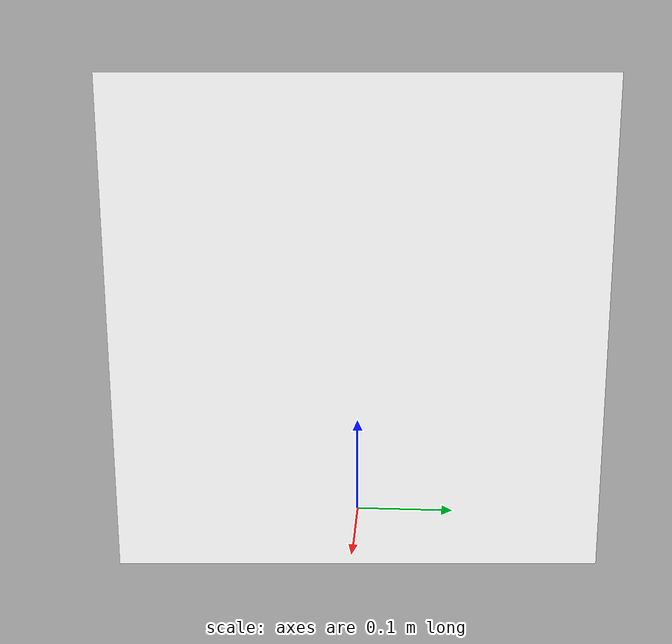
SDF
<sdf version="1.8">
 <world name="demo">
  <plugin filename="gz-sim-physics-system" name="gz::sim::systems::Physics"/>
  <plugin filename="gz-sim-sensors-system" name="gz::sim::systems::Sensors">
   <render_engine>ogre2</render_engine>
  </plugin>
  <plugin filename="gz-sim-scene-broadcaster-system" name="gz::sim::systems::SceneBroadcaster"/>
  <plugin filename="gz-sim-user-commands-system" name="gz::sim::systems::UserCommands"/>
  <physics name="10ms" type="ode">
   <real_time_update_rate>100</real_time_update_rate>
   <max_step_size>0.01</max_step_size>
   <real_time_factor>1.0</real_time_factor>
  </physics>
  <light name="sun" type="directional">
   <pose>0 0 10 0 0 0</pose>
   <diffuse>0.8 0.8 0.8 1</diffuse>
   <specular>0.2 0.2 0.2 1</specular>
   <attenuation>
    <range>1000</range>
    <constant>0.9</constant>
    <linear>0.01</linear>
    <quadratic>0.001</quadratic>
   </attenuation>
   <direction>-0.5 0.1 -0.9</direction>
  </light>
  <model name="cube_grid">
   <pose>0 0 0.2 -1.51 0 -1.51</pose>
   <static>true</static>
   <link name="link">
    <visual name="backgroundf">
     <pose>0.00 0.00 0.001 0 0 0</pose>
     <geometry><box><size>0.5 0.5 0.03</size></box></geometry>
     <material><ambient>1 1 1 1</ambient><diffuse>1 1 1 1</diffuse></material>
    </visual>
    <visual name="visual_cube_0_0">
     <geometry><box><size>0.03 0.03 0.03</size></box></geometry>
     <material><ambient>1 1 1 1</ambient><diffuse>1 1 1 1</diffuse></material>
    </visual>
    <visual name="visual_cube_0_1">
     <pose>0.03 0.00 0 0 0 0</pose>
     <geometry><box><size>0.03 0.03 0.03</size></box></geometry>
     <material><ambient>0 0 0 1</ambient><diffuse>0 0 0 1</diffuse></material>
    </visual>
    <visual name="visual_cube_0_2">
     <pose>0.06 0.00 0 0 0 0</pose>
     <geometry><box><size>0.03 0.03 0.03</size></box></geometry>
     <material><ambient>1 1 1 1</ambient><diffuse>1 1 1 1</diffuse></material>
    </visual>
    <visual name="visual_cube_0_3">
     <pose>0.09 0.00 0 0 0 0</pose>
     <geometry><box><size>0.03 0.03 0.03</size></box></geometry>
     <material><ambient>0 0 0 1</ambient><diffuse>0 0 0 1</diffuse></material>
    </visual>
    <visual name="visual_cube_0_4">
     <pose>0.12 0.00 0 0 0 0</pose>
     <geometry><box><size>0.03 0.03 0.03</size></box></geometry>
     <material><ambient>1 1 1 1</ambient><diffuse>1 1 1 1</diffuse></material>
    </visual>
    <visual name="visual_cube_0_5">
     <pose>0.15 0.00 0 0 0 0</pose>
     <geometry><box><size>0.03 0.03 0.03</size></box></geometry>
     <material><ambient>0 0 0 1</ambient><diffuse>0 0 0 1</diffuse></material>
    </visual>
    <visual name="visual_cube_0_6">
     <pose>0.18 0.00 0 0 0 0</pose>
     <geometry><box><size>0.03 0.03 0.03</size></box></geometry>
     <material><ambient>1 1 1 1</ambient><diffuse>1 1 1 1</diffuse></material>
    </visual>
    <visual name="visual_cube_0_7">
     <pose>0.21 0.00 0 0 0 0</pose>
     <geometry><box><size>0.03 0.03 0.03</size></box></geometry>
     <material><ambient>0 0 0 1</ambient><diffuse>0 0 0 1</diffuse></material>
    </visual>
    <visual name="visual_cube_1_0">
     <pose>0.00 0.03 0 0 0 0</pose>
     <geometry><box><size>0.03 0.03 0.03</size></box></geometry>
     <material><ambient>0 0 0 1</ambient><diffuse>0 0 0 1</diffuse></material>
    </visual>
    <visual name="visual_cube_1_1">
     <pose>0.03 0.03 0 0 0 0</pose>
     <geometry><box><size>0.03 0.03 0.03</size></box></geometry>
     <material><ambient>1 1 1 1</ambient><diffuse>1 1 1 1</diffuse></material>
    </visual>
    <visual name="visual_cube_1_2">
     <pose>0.06 0.03 0 0 0 0</pose>
     <geometry><box><size>0.03 0.03 0.03</size></box></geometry>
     <material><ambient>0 0 0 1</ambient><diffuse>0 0 0 1</diffuse></material>
    </visual>
    <visual name="visual_cube_1_3">
     <pose>0.09 0.03 0 0 0 0</pose>
     <geometry><box><size>0.03 0.03 0.03</size></box></geometry>
     <material><ambient>1 1 1 1</ambient><diffuse>1 1 1 1</diffuse></material>
    </visual>
    <visual name="visual_cube_1_4">
     <pose>0.12 0.03 0 0 0 0</pose>
     <geometry><box><size>0.03 0.03 0.03</size></box></geometry>
     <material><ambient>0 0 0 1</ambient><diffuse>0 0 0 1</diffuse></material>
    </visual>
    <visual name="visual_cube_1_5">
     <pose>0.15 0.03 0 0 0 0</pose>
     <geometry><box><size>0.03 0.03 0.03</size></box></geometry>
     <material><ambient>1 1 1 1</ambient><diffuse>1 1 1 1</diffuse></material>
    </visual>
    <visual name="visual_cube_1_6">
     <pose>0.18 0.03 0 0 0 0</pose>
     <geometry><box><size>0.03 0.03 0.03</size></box></geometry>
     <material><ambient>0 0 0 1</ambient><diffuse>0 0 0 1</diffuse></material>
    </visual>
    <visual name="visual_cube_1_7">
     <pose>0.21 0.03 0 0 0 0</pose>
     <geometry><box><size>0.03 0.03 0.03</size></box></geometry>
     <material><ambient>1 1 1 1</ambient><diffuse>1 1 1 1</diffuse></material>
    </visual>
    <visual name="visual_cube_2_0">
     <pose>0.00 0.06 0 0 0 0</pose>
     <geometry><box><size>0.03 0.03 0.03</size></box></geometry>
     <material><ambient>1 1 1 1</ambient><diffuse>1 1 1 1</diffuse></material>
    </visual>
    <visual name="visual_cube_2_1">
     <pose>0.03 0.06 0 0 0 0</pose>
     <geometry><box><size>0.03 0.03 0.03</size></box></geometry>
     <material><ambient>0 0 0 1</ambient><diffuse>0 0 0 1</diffuse></material>
    </visual>
    <visual name="visual_cube_2_2">
     <pose>0.06 0.06 0 0 0 0</pose>
     <geometry><box><size>0.03 0.03 0.03</size></box></geometry>
     <material><ambient>1 1 1 1</ambient><diffuse>1 1 1 1</diffuse></material>
    </visual>
    <visual name="visual_cube_2_3">
     <pose>0.09 0.06 0 0 0 0</pose>
     <geometry><box><size>0.03 0.03 0.03</size></box></geometry>
     <material><ambient>0 0 0 1</ambient><diffuse>0 0 0 1</diffuse></material>
    </visual>
    <visual name="visual_cube_2_4">
     <pose>0.12 0.06 0 0 0 0</pose>
     <geometry><box><size>0.03 0.03 0.03</size></box></geometry>
     <material><ambient>1 1 1 1</ambient><diffuse>1 1 1 1</diffuse></material>
    </visual>
    <visual name="visual_cube_2_5">
     <pose>0.15 0.06 0 0 0 0</pose>
     <geometry><box><size>0.03 0.03 0.03</size></box></geometry>
     <material><ambient>0 0 0 1</ambient><diffuse>0 0 0 1</diffuse></material>
    </visual>
    <visual name="visual_cube_2_6">
     <pose>0.18 0.06 0 0 0 0</pose>
     <geometry><box><size>0.03 0.03 0.03</size></box></geometry>
     <material><ambient>1 1 1 1</ambient><diffuse>1 1 1 1</diffuse></material>
    </visual>
    <visual name="visual_cube_2_7">
     <pose>0.21 0.06 0 0 0 0</pose>
     <geometry><box><size>0.03 0.03 0.03</size></box></geometry>
     <material><ambient>0 0 0 1</ambient><diffuse>0 0 0 1</diffuse></material>
    </visual>
    <visual name="visual_cube_3_0">
     <pose>0.00 0.09 0 0 0 0</pose>
     <geometry><box><size>0.03 0.03 0.03</size></box></geometry>
     <material><ambient>0 0 0 1</ambient><diffuse>0 0 0 1</diffuse></material>
    </visual>
    <visual name="visual_cube_3_1">
     <pose>0.03 0.09 0 0 0 0</pose>
     <geometry><box><size>0.03 0.03 0.03</size></box></geometry>
     <material><ambient>1 1 1 1</ambient><diffuse>1 1 1 1</diffuse></material>
    </visual>
    <visual name="visual_cube_3_2">
     <pose>0.06 0.09 0 0 0 0</pose>
     <geometry><box><size>0.03 0.03 0.03</size></box></geometry>
     <material><ambient>0 0 0 1</ambient><diffuse>0 0 0 1</diffuse></material>
    </visual>
    <visual name="visual_cube_3_3">
     <pose>0.09 0.09 0 0 0 0</pose>
     <geometry><box><size>0.03 0.03 0.03</size></box></geometry>
     <material><ambient>1 1 1 1</ambient><diffuse>1 1 1 1</diffuse></material>
    </visual>
    <visual name="visual_cube_3_4">
     <pose>0.12 0.09 0 0 0 0</pose>
     <geometry><box><size>0.03 0.03 0.03</size></box></geometry>
     <material><ambient>0 0 0 1</ambient><diffuse>0 0 0 1</diffuse></material>
    </visual>
    <visual name="visual_cube_3_5">
     <pose>0.15 0.09 0 0 0 0</pose>
     <geometry><box><size>0.03 0.03 0.03</size></box></geometry>
     <material><ambient>1 1 1 1</ambient><diffuse>1 1 1 1</diffuse></material>
    </visual>
    <visual name="visual_cube_3_6">
     <pose>0.18 0.09 0 0 0 0</pose>
     <geometry><box><size>0.03 0.03 0.03</size></box></geometry>
     <material><ambient>0 0 0 1</ambient><diffuse>0 0 0 1</diffuse></material>
    </visual>
    <visual name="visual_cube_3_7">
     <pose>0.21 0.09 0 0 0 0</pose>
     <geometry><box><size>0.03 0.03 0.03</size></box></geometry>
     <material><ambient>1 1 1 1</ambient><diffuse>1 1 1 1</diffuse></material>
    </visual>
    <visual name="visual_cube_4_0">
     <pose>0.00 0.12 0 0 0 0</pose>
     <geometry><box><size>0.03 0.03 0.03</size></box></geometry>
     <material><ambient>1 1 1 1</ambient><diffuse>1 1 1 1</diffuse></material>
    </visual>
    <visual name="visual_cube_4_1">
     <pose>0.03 0.12 0 0 0 0</pose>
     <geometry><box><size>0.03 0.03 0.03</size></box></geometry>
     <material><ambient>0 0 0 1</ambient><diffuse>0 0 0 1</diffuse></material>
    </visual>
    <visual name="visual_cube_4_2">
     <pose>0.06 0.12 0 0 0 0</pose>
     <geometry><box><size>0.03 0.03 0.03</size></box></geometry>
     <material><ambient>1 1 1 1</ambient><diffuse>1 1 1 1</diffuse></material>
    </visual>
    <visual name="visual_cube_4_3">
     <pose>0.09 0.12 0 0 0 0</pose>
     <geometry><box><size>0.03 0.03 0.03</size></box></geometry>
     <material><ambient>0 0 0 1</ambient><diffuse>0 0 0 1</diffuse></material>
    </visual>
    <visual name="visual_cube_4_4">
     <pose>0.12 0.12 0 0 0 0</pose>
     <geometry><box><size>0.03 0.03 0.03</size></box></geometry>
     <material><ambient>1 1 1 1</ambient><diffuse>1 1 1 1</diffuse></material>
    </visual>
    <visual name="visual_cube_4_5">
     <pose>0.15 0.12 0 0 0 0</pose>
     <geometry><box><size>0.03 0.03 0.03</size></box></geometry>
     <material><ambient>0 0 0 1</ambient><diffuse>0 0 0 1</diffuse></material>
    </visual>
    <visual name="visual_cube_4_6">
     <pose>0.18 0.12 0 0 0 0</pose>
     <geometry><box><size>0.03 0.03 0.03</size></box></geometry>
     <material><ambient>1 1 1 1</ambient><diffuse>1 1 1 1</diffuse></material>
    </visual>
    <visual name="visual_cube_4_7">
     <pose>0.21 0.12 0 0 0 0</pose>
     <geometry><box><size>0.03 0.03 0.03</size></box></geometry>
     <material><ambient>0 0 0 1</ambient><diffuse>0 0 0 1</diffuse></material>
    </visual>
    <visual name="visual_cube_5_0">
     <pose>0.00 0.15 0 0 0 0</pose>
     <geometry><box><size>0.03 0.03 0.03</size></box></geometry>
     <material><ambient>0 0 0 1</ambient><diffuse>0 0 0 1</diffuse></material>
    </visual>
    <visual name="visual_cube_5_1">
     <pose>0.03 0.15 0 0 0 0</pose>
     <geometry><box><size>0.03 0.03 0.03</size></box></geometry>
     <material><ambient>1 1 1 1</ambient><diffuse>1 1 1 1</diffuse></material>
    </visual>
    <visual name="visual_cube_5_2">
     <pose>0.06 0.15 0 0 0 0</pose>
     <geometry><box><size>0.03 0.03 0.03</size></box></geometry>
     <material><ambient>0 0 0 1</ambient><diffuse>0 0 0 1</diffuse></material>
    </visual>
    <visual name="visual_cube_5_3">
     <pose>0.09 0.15 0 0 0 0</pose>
     <geometry><box><size>0.03 0.03 0.03</size></box></geometry>
     <material><ambient>1 1 1 1</ambient><diffuse>1 1 1 1</diffuse></material>
    </visual>
    <visual name="visual_cube_5_4">
     <pose>0.12 0.15 0 0 0 0</pose>
     <geometry><box><size>0.03 0.03 0.03</size></box></geometry>
     <material><ambient>0 0 0 1</ambient><diffuse>0 0 0 1</diffuse></material>
    </visual>
    <visual name="visual_cube_5_5">
     <pose>0.15 0.15 0 0 0 0</pose>
     <geometry><box><size>0.03 0.03 0.03</size></box></geometry>
     <material><ambient>1 1 1 1</ambient><diffuse>1 1 1 1</diffuse></material>
    </visual>
    <visual name="visual_cube_5_6">
     <pose>0.18 0.15 0 0 0 0</pose>
     <geometry><box><size>0.03 0.03 0.03</size></box></geometry>
     <material><ambient>0 0 0 1</ambient><diffuse>0 0 0 1</diffuse></material>
    </visual>
    <visual name="visual_cube_5_7">
     <pose>0.21 0.15 0 0 0 0</pose>
     <geometry><box><size>0.03 0.03 0.03</size></box></geometry>
     <material><ambient>1 1 1 1</ambient><diffuse>1 1 1 1</diffuse></material>
    </visual>
   </link>
  </model>
 </world>
</sdf>
